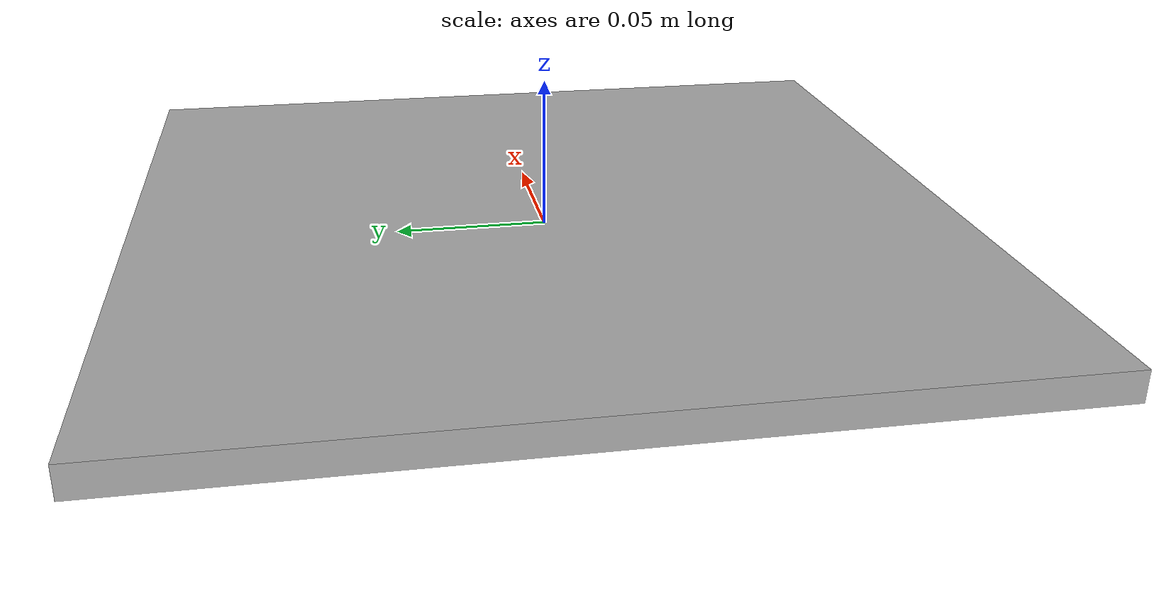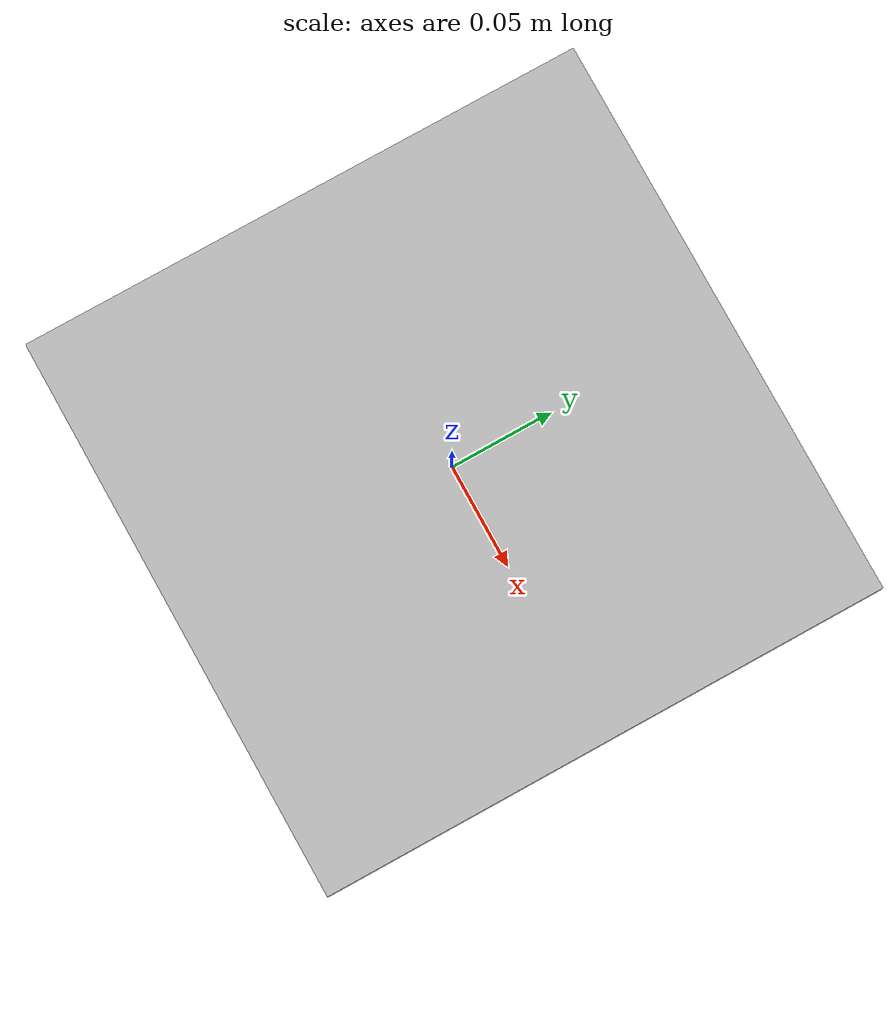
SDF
<?xml version="1.0" ?>
<sdf version="1.6">
  <model name="aruco_marker_20">
    <static>true</static>
    <link name="link">
      <visual name="visual">
        <geometry>
          <box>
            <size>0.275 0.275 0.01</size>
          </box>
        </geometry>
        <material>
          <script>
            <uri>model://aruco_marker_20/materials/scripts</uri>
            <uri>model://aruco_marker_20/materials/textures</uri>
            <name>ArucoMarker/ID20</name>
          </script>
        </material>
      </visual>
    </link>
  </model>
</sdf>
